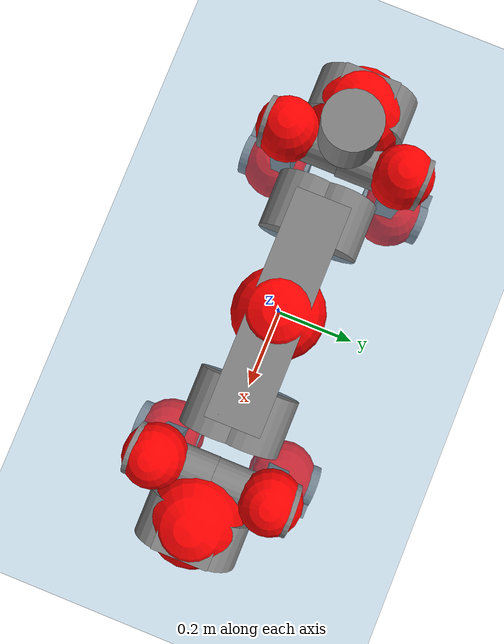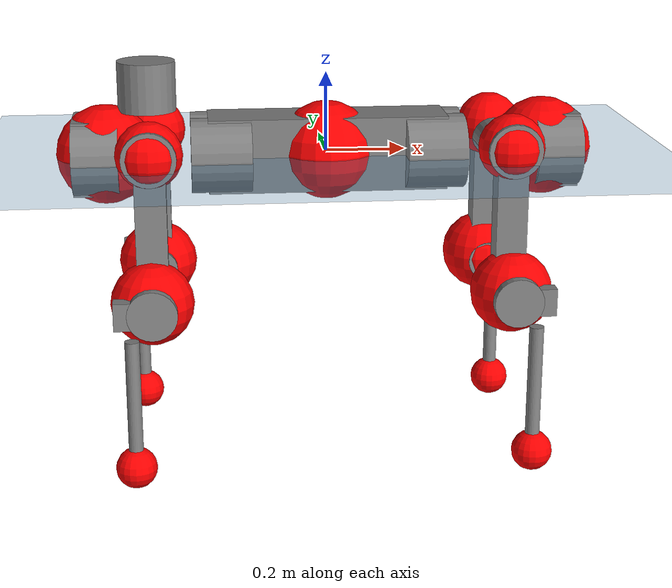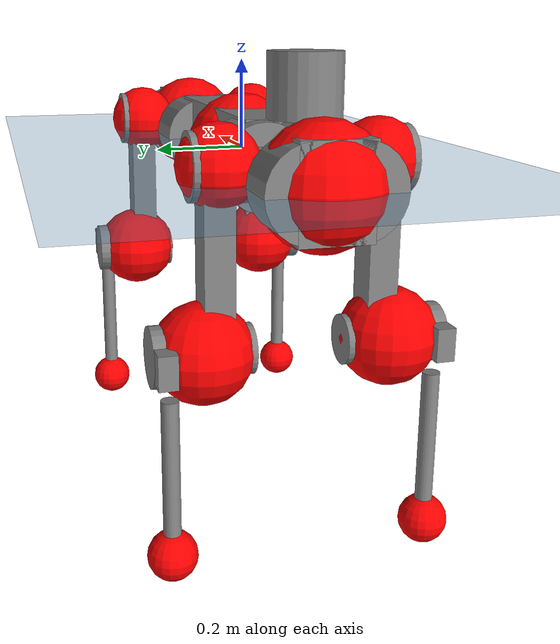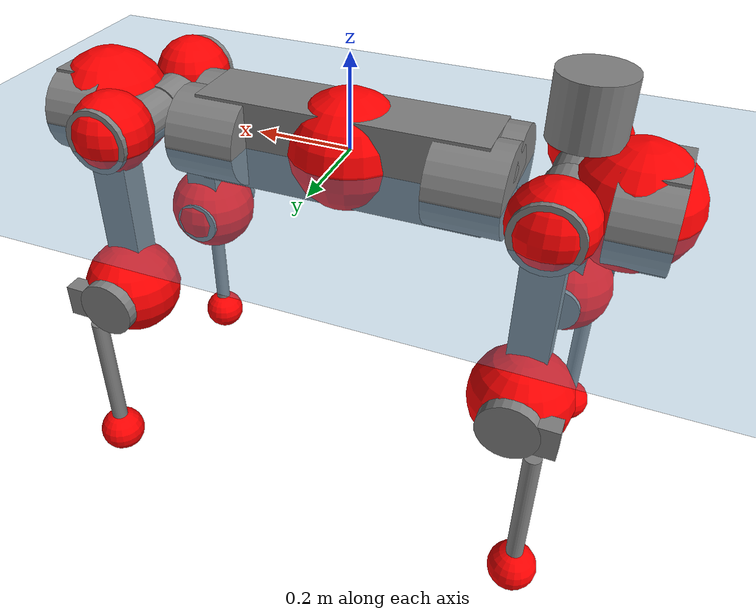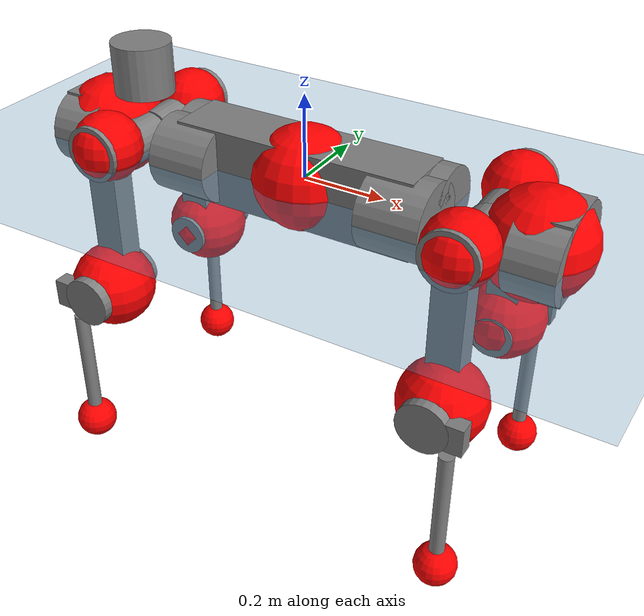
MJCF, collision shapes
<mujoco model="anymal_c">
  <compiler angle="radian" assetdir="assets" balanceinertia="true" inertiafromgeom="false"/>

  <option timestep="0.005" density="1.2" viscosity="2e-05"/>

  <size nkey="1"/>

  <visual>
    <quality shadowsize="8192"/>
    <map shadowclip="0.5"/>
  </visual>

  <default>
    <default class="/">
      <material specular="0" shininess="0.25"/>
      <geom contype="0" conaffinity="0" group="1" solref="-1000 -80"/>
      <site size="0.01 0.005 0.005" group="5"/>
      <general forcelimited="true" forcerange="-80 80" biastype="affine" gainprm="80" biasprm="0 -80 -2"/>
      <default class="anymal_c">
        <joint armature="0.01" damping="0.01" frictionloss="0.1"/>
        <default class="visual">
          <geom type="mesh" group="2"/>
          <default class="visual_zflip"/>
        </default>
        <default class="collision">
          <geom type="cylinder" group="3"/>
          <default class="foot">
            <geom size="0.03 0 0" type="sphere" condim="6" priority="1" friction="0.8 0.02 0.01" solimp="0.015 1 0.03"/>
          </default>
        </default>
      </default>
      <default class="reward_collision_sphere">
        <geom group="5" rgba="1 0 0 1"/>
      </default>
    </default>
  </default>

  <asset>
    <texture type="skybox" colorspace="auto" name="//unnamed_texture_0" builtin="gradient" rgb1="0.95 0.95 0.95" rgb2="0.95 0.95 0.95" width="100" height="600"/>
    <texture type="2d" colorspace="auto" name="texplane" builtin="checker" rgb1="0.345 0.575 0.748" rgb2="0.345 0.575 0.748" markrgb="1 1 1" width="512" height="512"/>
    <texture type="2d" colorspace="linear" name="base" file="base.png"/>
    <texture type="2d" colorspace="linear" name="top_shell" file="top_shell.png"/>
    <texture type="2d" colorspace="linear" name="bottom_shell" file="bottom_shell.png"/>
    <texture type="2d" colorspace="linear" name="remote" file="remote.png"/>
    <texture type="2d" colorspace="linear" name="hatch" file="hatch.png"/>
    <texture type="2d" colorspace="linear" name="handle" file="handle.png"/>
    <texture type="2d" colorspace="linear" name="face" file="face.png"/>
    <texture type="2d" colorspace="linear" name="battery" file="battery.png"/>
    <texture type="2d" colorspace="linear" name="lidar_cage" file="lidar_cage.png"/>
    <texture type="2d" colorspace="linear" name="depth_camera" file="depth_camera.png"/>
    <texture type="2d" colorspace="linear" name="wide_angle_camera" file="wide_angle_camera.png"/>
    <texture type="2d" colorspace="linear" name="lidar" file="lidar.png"/>
    <texture type="2d" colorspace="linear" name="drive" file="drive.png"/>
    <texture type="2d" colorspace="linear" name="hip_l" file="hip_l.png"/>
    <texture type="2d" colorspace="linear" name="shank_l" file="shank_l.png"/>
    <texture type="2d" colorspace="linear" name="foot" file="foot.png"/>
    <texture type="2d" colorspace="linear" name="thigh" file="thigh.png"/>
    <texture type="2d" colorspace="linear" name="shank_r" file="shank_r.png"/>
    <texture type="2d" colorspace="linear" name="hip_r" file="hip_r.png"/>
    <material name="MatPlane" class="/" texture="texplane" texuniform="true" texrepeat="2 2" specular="0.9" shininess="0.5"/>
    <material name="black_plastic" class="/" rgba="0.007 0.007 0.007 1"/>
    <material name="green" class="/" rgba="0.052 0.178 0.033 1"/>
    <material name="red" class="/" rgba="0.178 0.006 0.005 1"/>
    <material name="yellow" class="/" rgba="0.178 0.119 0.006 1"/>
    <material name="lwl" class="/" rgba="0.8 0.8 0.8 1"/>
    <material name="base" class="/" texture="base"/>
    <material name="top_shell" class="/" texture="top_shell"/>
    <material name="bottom_shell" class="/" texture="bottom_shell"/>
    <material name="hip_l" class="/" texture="hip_l"/>
    <material name="thigh" class="/" texture="thigh"/>
    <material name="shank_l" class="/" texture="shank_l"/>
    <material name="foot" class="/" texture="foot"/>
    <material name="hip_r" class="/" texture="hip_r"/>
    <material name="shank" class="/" texture="shank_r"/>
    <material name="hatch" class="/" texture="hatch"/>
    <material name="remote" class="/" texture="remote"/>
    <material name="handle" class="/" texture="handle"/>
    <material name="face" class="/" texture="face"/>
    <material name="depth_camera" class="/" texture="depth_camera"/>
    <material name="wide_angle_camera" class="/" texture="wide_angle_camera"/>
    <material name="battery" class="/" texture="battery"/>
    <material name="lidar_cage" class="/" texture="lidar_cage"/>
    <material name="lidar" class="/" texture="lidar"/>
    <material name="drive" class="/" texture="drive"/>
    <mesh name="base_0" class="/" file="base_0.obj"/>
    <mesh name="base_1" class="/" file="base_1.obj"/>
    <mesh name="base_2" class="/" file="base_2.obj"/>
    <mesh name="base_3" class="/" file="base_3.obj"/>
    <mesh name="base_4" class="/" file="base_4.obj"/>
    <mesh name="base_5" class="/" file="base_5.obj"/>
    <mesh name="top_shell" class="/" file="top_shell.obj"/>
    <mesh name="bottom_shell" class="/" file="bottom_shell.obj"/>
    <mesh name="remote" class="/" file="remote.obj"/>
    <mesh name="handle" class="/" file="handle.obj"/>
    <mesh name="face" class="/" file="face.obj"/>
    <mesh name="wide_angle_camera" class="/" file="wide_angle_camera.obj"/>
    <mesh name="depth_camera" class="/" file="depth_camera.obj"/>
    <mesh name="battery" class="/" file="battery.obj"/>
    <mesh name="lidar_cage" class="/" file="lidar_cage.obj"/>
    <mesh name="lidar" class="/" file="lidar.obj"/>
    <mesh name="drive" class="/" file="drive.obj"/>
    <mesh name="hip_l" class="/" file="hip_l.obj"/>
    <mesh name="thigh" class="/" file="thigh.obj"/>
    <mesh name="shank_l" class="/" file="shank_l.obj"/>
    <mesh name="foot" class="/" file="foot.obj"/>
    <mesh name="hip_r" class="/" file="hip_r.obj"/>
    <mesh name="hatch" class="/" file="hatch.obj"/>
    <mesh name="shank_r" class="/" file="shank_r.obj"/>
  </asset>

  <worldbody>
    <geom name="floor" class="/" size="100 100 0.125" type="plane" group="0" material="MatPlane"/>
    <light name="toplight_shadow" class="/" pos="0 0 5" dir="0.0990148 0.0990148 -0.990148" type="directional" ambient="0.04 0.04 0.04" diffuse="0.55 0.55 0.55" specular="0.12 0.12 0.12"/>
    <light name="toplight_fill" class="/" pos="0 0 5" dir="0.0990148 0.0990148 -0.990148" type="directional" castshadow="false" ambient="0.04 0.04 0.04" diffuse="0.3 0.3 0.3" specular="0.08 0.08 0.08"/>
    <body name="trunk" childclass="anymal_c" pos="0.00201374 0.000739726 0.00194689" quat="0.999999 0.00106101 -0.000280582 6.44455e-05">
      <inertial pos="0.00597096 0.00441912 0.064165" quat="0.49537 0.503716 0.498934 0.501939" mass="21.1761" diaginertia="1.68064 0.0402795 0.665284"/>
      <joint name="//unnamed_joint_0" type="free" armature="0" damping="0" frictionloss="0"/>
      <geom name="//unnamed_geom_1" class="visual" material="green" mesh="base_0"/>
      <geom name="//unnamed_geom_2" class="visual" material="yellow" mesh="base_1"/>
      <geom name="//unnamed_geom_3" class="visual" material="red" mesh="base_2"/>
      <geom name="//unnamed_geom_4" class="visual" material="black_plastic" mesh="base_3"/>
      <geom name="//unnamed_geom_5" class="visual" material="lwl" mesh="base_4"/>
      <geom name="//unnamed_geom_6" class="visual" material="base" mesh="base_5"/>
      <geom name="trunk_1" class="collision" size="0.299132 0.0722042 0.092834" type="box"/>
      <geom name="trunk_2" class="collision" size="0.092834 0.0747829" pos="0.267294 0.0410675 0" quat="0.707107 0 0.707107 0"/>
      <geom name="trunk_3" class="collision" size="0.092834 0.0747829" pos="-0.267294 0.0410675 0" quat="0.707107 0 0.707107 0"/>
      <geom name="trunk_4" class="collision" size="0.092834 0.0747829" pos="0.267294 -0.0410675 0" quat="0.707107 0 0.707107 0"/>
      <geom name="trunk_5" class="collision" size="0.092834 0.0747829" pos="-0.267294 -0.0410675 0" quat="0.707107 0 0.707107 0"/>
      <geom name="//unnamed_geom_12" class="visual" material="top_shell" mesh="top_shell"/>
      <geom name="//unnamed_geom_13" class="visual" material="bottom_shell" mesh="bottom_shell"/>
      <geom name="//unnamed_geom_14" class="visual" material="remote" mesh="remote"/>
      <geom name="//unnamed_geom_15" class="visual" material="handle" mesh="handle"/>
      <geom name="//unnamed_geom_16" class="visual" pos="0.509395 0 0" quat="1 0 0 0" material="face" mesh="face"/>
      <geom name="trunk_6" class="collision" size="0.0567319 0.0722042 0.092834" pos="0.576987 0 0" type="box"/>
      <geom name="//unnamed_geom_18" class="collision" size="0.092834 0.0567319" pos="0.576987 0.0410675 0" quat="0.707107 0 0.707107 0"/>
      <geom name="//unnamed_geom_19" class="collision" size="0.092834 0.0567319" pos="0.576987 -0.0410675 0" quat="0.707107 0 0.707107 0"/>
      <geom name="//unnamed_geom_20" class="visual" pos="0.567341 0 -0.0377217" quat="0.965926 0 0.258819 0" material="depth_camera" mesh="depth_camera"/>
      <geom name="//unnamed_geom_21" class="visual" pos="0.630445 0 0.0191444" material="wide_angle_camera" mesh="wide_angle_camera"/>
      <geom name="//unnamed_geom_22" class="visual_zflip" pos="-0.509395 0 0" quat="0 0 0 1" material="face" mesh="face"/>
      <geom name="trunk_7" class="collision" size="0.0567319 0.0722042 0.092834" pos="-0.576987 0 0" quat="0 0 0 1" type="box"/>
      <geom name="//unnamed_geom_24" class="collision" size="0.092834 0.0567319" pos="-0.576987 -0.0410675 0" quat="0 -0.707107 0 0.707107"/>
      <geom name="//unnamed_geom_25" class="collision" size="0.092834 0.0567319" pos="-0.576987 0.0410675 0" quat="0 -0.707107 0 0.707107"/>
      <geom name="//unnamed_geom_26" class="visual" pos="-0.567341 0 -0.0377217" quat="0 -0.258819 0 0.965926" material="depth_camera" mesh="depth_camera"/>
      <geom name="//unnamed_geom_27" class="visual_zflip" pos="-0.630445 0 0.0191444" quat="0 0 0 1" material="wide_angle_camera" mesh="wide_angle_camera"/>
      <geom name="//unnamed_geom_28" class="visual" material="battery" mesh="battery"/>
      <geom name="//unnamed_geom_29" class="visual" pos="0 0.0364318 0.0367712" quat="0.683013 -0.183013 0.183013 0.683013" material="depth_camera" mesh="depth_camera"/>
      <geom name="//unnamed_geom_30" class="visual" pos="0 -0.0364318 0.0367712" quat="0.683013 0.183013 0.183013 -0.683013" material="depth_camera" mesh="depth_camera"/>
      <geom name="//unnamed_geom_31" class="visual" pos="-0.447334 0 0.0939953" quat="1 0 0 0" material="lidar_cage" mesh="lidar_cage"/>
      <geom name="trunk_8" class="collision" size="0.0722042 0.0618893" pos="-0.447334 0 0.170726"/>
      <geom name="//unnamed_geom_33" class="visual" pos="-0.447334 -0.000252326 0.181852" quat="0.707107 0 0 -0.707107" material="lidar" mesh="lidar"/>
      <geom name="//unnamed_geom_34" class="visual" pos="0.368559 0.0612605 -1.194e-08" quat="0.258819 0.965926 0 0" material="drive" mesh="drive"/>
      <geom name="//unnamed_geom_35" class="visual" pos="0.368559 -0.0612605 1.194e-08" quat="0.258819 -0.965926 0 0" material="drive" mesh="drive"/>
      <geom name="//unnamed_geom_36" class="visual" pos="-0.368559 0.0612605 1.194e-08" quat="0 0 0.965926 -0.258819" material="drive" mesh="drive"/>
      <geom name="//unnamed_geom_37" class="visual" pos="-0.368559 -0.0612605 -1.194e-08" quat="0 0 -0.965926 -0.258819" material="drive" mesh="drive"/>
      <geom name="//unnamed_geom_38" class="visual" pos="0.142557 0 0.0933559" quat="1 0 0 0" material="hatch" mesh="hatch"/>
      <geom name="//unnamed_geom_39" class="reward_collision_sphere" size="0.123779"/>
      <geom name="//unnamed_geom_40" class="reward_collision_sphere" size="0.123779" pos="0.553022 0 0"/>
      <geom name="//unnamed_geom_41" class="reward_collision_sphere" size="0.123779" pos="-0.553022 0 0"/>
      <site name="imu" pos="0.337854 -0.0067278 0.0373658" size="0.0103149"/>
      <camera name="track" pos="0 -1.17336 0" quat="0.707107 0.707107 0 0" mode="trackcom"/>
      <camera name="ego_camera" pos="0.553022 0 -0.0511539" quat="-0.5 -0.5 0.5 0.5"/>
      <body name="LF_HIP" pos="0.37148 0.0599534 -0.000704543" quat="0.258828 0.965923 -9.85381e-07 -2.96176e-06">
        <inertial pos="0.0650621 -0.00894201 -0.012429" quat="-0.127089 0.708451 -0.139249 0.680115" mass="3.18615" diaginertia="0.0172164 0.000336203 0.0112955"/>
        <joint name="LF_HAA" pos="0 0 0" axis="0.999924 0.00511159 -0.0112028" range="-0.755499 0.478808" armature="0.00739396" damping="0.0357504" frictionloss="0.0908952"/>
        <geom name="//unnamed_geom_42" class="visual" pos="0 -0.000702376 0.000115365" quat="0.258819 -0.965926 0 0" material="hip_l" mesh="hip_l"/>
        <geom name="//unnamed_geom_43" class="visual" pos="0.0736134 -0.0809879 -0.0518781" quat="0.183013 -0.683013 0.683013 0.183013" material="drive" mesh="drive"/>
        <geom name="//unnamed_geom_44" class="collision" size="0.0515744 0.0722042" pos="0.0736134 -0.00701657 -0.00883045" quat="-0.353553 -0.612372 0.612372 -0.353553"/>
        <body name="LF_THIGH" pos="0.0738851 -0.0449702 -0.0544164" quat="0.183716 -0.682499 0.683125 0.183805">
          <inertial pos="0.0387687 0.000791867 -0.31906" quat="0.993181 -0.00454381 -0.0872195 0.0772223" mass="3.39199" diaginertia="0.0917734 0.00211171 0.0141674"/>
          <joint name="LF_HFE" pos="0 0 0" axis="0.999499 0.0289288 0.0128202" stiffness="0.01025" range="-3.18719 3.18805" armature="0.0114171" damping="0" frictionloss="0.125666"/>
          <geom name="//unnamed_geom_45" class="visual" pos="0.0127784 2.01358e-05 0" quat="0.707107 0 0 -0.707107" material="thigh" mesh="thigh"/>
          <geom name="//unnamed_geom_46" class="collision" size="0.0670468 0.0412595" pos="0.0491575 0 0" quat="0.5 0.5 -0.5 -0.5"/>
          <geom name="//unnamed_geom_47" class="collision" size="0.0386808 0.0309447 0.145764" pos="0.0368682 0 -0.180719" quat="0.707107 0 0 -0.707107" type="box"/>
          <geom name="//unnamed_geom_48" class="visual" pos="0.123263 0 -0.364472" quat="1 0 0 0" material="drive" mesh="drive"/>
          <geom name="//unnamed_geom_49" class="collision" size="0.0515744 0.0722042" pos="0.0372368 0 -0.364472" quat="0.707107 0 0.707107 0"/>
          <geom name="//unnamed_geom_50" class="reward_collision_sphere" size="0.0825191" pos="0.0307235 0 0"/>
          <body name="LF_SHANK" pos="0.119859 0.00361828 -0.35813" quat="0.999999 -0.0007408 0.00074125 -0.00127145">
            <inertial pos="0.00466293 -0.0362591 -0.105156" quat="0.991831 -0.123471 -0.00318094 -0.0318872" mass="0.638925" diaginertia="0.0287625 0.000646843 0.00373841"/>
            <joint name="LF_KFE" pos="0 0 0" axis="0.999976 0.00666709 -0.001811" range="-3.10882 3.15912" armature="0.0103672" damping="0.0248885" frictionloss="0.096713"/>
            <geom name="//unnamed_geom_51" class="visual" pos="0.00416677 0.0222174 0" quat="0.707107 0 0 -0.707107" material="shank_l" mesh="shank_l"/>
            <geom name="LF_kfe_act" class="collision" size="0.0618893 0.0206298" pos="0.0245788 0 0" quat="0.5 0.5 -0.5 -0.5"/>
            <geom name="//unnamed_geom_53" class="collision" size="0.0593096 0.0348127 0.0195983" pos="0.0245788 -0.0337335 0" quat="0.5 0.5 -0.5 -0.5" type="box"/>
            <geom name="//unnamed_geom_54" class="visual" pos="0.0160366 -0.0444387 -0.432212" quat="0.382683 0 0 -0.92388" material="foot" mesh="foot"/>
            <geom name="LF_calf" class="collision" size="0.018051 0.1457" pos="0.0160376 -0.0515984 -0.216106" quat="0.707107 0 0 -0.707107"/>
            <geom name="LF_foot" class="foot" size="0.0269987" pos="0.0160376 -0.0515984 -0.403438" quat="0.707107 0 0 -0.707107"/>
            <geom name="//unnamed_geom_57" class="reward_collision_sphere" size="0.103149" pos="-0.0614469 0 0"/>
            <geom name="//unnamed_geom_58" class="reward_collision_sphere" size="0.0515744" pos="0.0160376 -0.0515984 -0.403438"/>
            <site name="LF_foot" class="foot" pos="0.0160376 -0.0515984 -0.403438" quat="0.707107 0 0 -0.707107" size="0.0103149"/>
          </body>
        </body>
      </body>
      <body name="RF_HIP" pos="0.370151 -0.0615976 0.00198279" quat="0.258591 -0.965987 -0.000458044 0.000263509">
        <inertial pos="0.065544 0.00722627 -0.00882756" quat="0.135077 0.679136 0.128733 0.709899" mass="2.92846" diaginertia="0.016069 0.000334476 0.0110386"/>
        <joint name="RF_HAA" pos="0 0 0" axis="0.999976 -0.00253354 -0.0064248" range="-0.394776 0.765108" armature="0.0124212" damping="0.0129028" frictionloss="0.126284"/>
        <geom name="//unnamed_geom_59" class="visual" pos="0 0.00070237 0.000115364" quat="0.258819 0.965926 0 0" material="hip_r" mesh="hip_r"/>
        <geom name="//unnamed_geom_60" class="visual" pos="0.0736134 0.0809879 -0.0518781" quat="0.183013 0.683013 0.683013 -0.183013" material="drive" mesh="drive"/>
        <geom name="//unnamed_geom_61" class="collision" size="0.0515744 0.0722042" pos="0.0736134 0.00701657 -0.00883045" quat="-0.353553 0.612372 0.612372 0.353553"/>
        <body name="RF_THIGH" pos="0.0731819 0.0374229 -0.0540249" quat="0.182597 0.68353 0.682557 -0.183198">
          <inertial pos="0.0385077 0.00245664 -0.316431" quat="0.991665 -0.00410564 -0.0718299 0.106885" mass="3.72206" diaginertia="0.0900014 0.00211517 0.0148733"/>
          <joint name="RF_HFE" pos="0 0 0" axis="0.999905 -0.0130222 0.00461095" stiffness="0.00472675" range="-3.26605 3.10878" armature="0.0100319" damping="0.0181464" frictionloss="0.0650394"/>
          <geom name="//unnamed_geom_62" class="visual" pos="0.0127784 2.01358e-05 0" quat="0.707107 0 0 -0.707107" material="thigh" mesh="thigh"/>
          <geom name="//unnamed_geom_63" class="collision" size="0.0670468 0.0412595" pos="0.0491575 0 0" quat="0.5 0.5 0.5 0.5"/>
          <geom name="//unnamed_geom_64" class="collision" size="0.0386808 0.0309447 0.145764" pos="0.0368682 0 -0.180719" quat="0.707107 0 0 0.707107" type="box"/>
          <geom name="//unnamed_geom_65" class="visual" pos="0.123263 0 -0.364472" quat="1 0 0 0" material="drive" mesh="drive"/>
          <geom name="//unnamed_geom_66" class="collision" size="0.0515744 0.0722042" pos="0.0372368 0 -0.364472" quat="0.707107 0 0.707107 0"/>
          <geom name="//unnamed_geom_67" class="reward_collision_sphere" size="0.0825191" pos="0.0307235 0 0"/>
          <body name="RF_SHANK" pos="0.118964 0.00526555 -0.36311" quat="1 -0.000807494 0.000137598 -0.000434924">
            <inertial pos="0.00748171 0.0345153 -0.108261" quat="0.993001 0.114803 -0.00380581 0.0274749" mass="0.631148" diaginertia="0.0308919 0.000672682 0.00392881"/>
            <joint name="RF_KFE" pos="0 0 0" axis="0.999999 0.000401674 -0.00163232" range="-3.12232 3.11274" armature="0.00948932" damping="0.0191839" frictionloss="0.133199"/>
            <geom name="//unnamed_geom_68" class="visual" pos="0.00416674 -0.0222174 0" quat="0.707107 0 0 0.707107" material="shank" mesh="shank_r"/>
            <geom name="RF_kfe_act" class="collision" size="0.0618893 0.0206298" pos="0.0245788 0 0" quat="0.5 0.5 0.5 0.5"/>
            <geom name="//unnamed_geom_70" class="collision" size="0.0593096 0.0348127 0.0195983" pos="0.0245788 0.0337335 0" quat="0.5 0.5 0.5 0.5" type="box"/>
            <geom name="//unnamed_geom_71" class="visual" pos="0.0160387 0.0444387 -0.432212" quat="0.382683 0 0 0.92388" material="foot" mesh="foot"/>
            <geom name="RF_calf" class="collision" size="0.018051 0.1457" pos="0.0160376 0.0515984 -0.216106" quat="0.707107 0 0 0.707107"/>
            <geom name="RF_foot" class="foot" size="0.0392466" pos="0.0160376 0.0515984 -0.403438" quat="0.707107 0 0 0.707107"/>
            <geom name="//unnamed_geom_74" class="reward_collision_sphere" size="0.103149" pos="-0.0614469 0 0"/>
            <geom name="//unnamed_geom_75" class="reward_collision_sphere" size="0.0515744" pos="0.0160376 0.0515984 -0.403438"/>
            <site name="RF_foot" class="foot" pos="0.0160376 0.0515984 -0.403438" quat="0.707107 0 0 0.707107" size="0.0103149"/>
          </body>
        </body>
      </body>
      <body name="LH_HIP" pos="-0.362362 0.0620197 0.00192119" quat="0.000826087 2.68759e-05 0.965736 -0.259526">
        <inertial pos="0.0702292 0.00409135 -0.00909293" quat="0.136763 0.681134 0.123839 0.708531" mass="3.09623" diaginertia="0.0169159 0.000331829 0.0124429"/>
        <joint name="LH_HAA" pos="0 0 0" axis="0.999971 0.0035542 -0.0067601" range="-0.469472 0.868394" armature="0.0129237" damping="0.00714191" frictionloss="0.0968922"/>
        <geom name="//unnamed_geom_76" class="visual" pos="0 0.00070237 0.000115364" quat="-0.258819 -0.965926 0 0" material="hip_r" mesh="hip_r"/>
        <geom name="//unnamed_geom_77" class="visual" pos="0.0736134 0.0809879 -0.0518781" quat="0.183013 0.683013 0.683013 -0.183013" material="drive" mesh="drive"/>
        <geom name="//unnamed_geom_78" class="collision" size="0.0515744 0.0722042" pos="0.0736134 0.00701657 -0.00883045" quat="-0.353553 0.612372 0.612372 0.353553"/>
        <body name="LH_THIGH" pos="0.0748444 0.0497381 -0.0564029" quat="0.183162 0.682974 0.683019 -0.182983">
          <inertial pos="0.038157 -0.0033479 -0.316361" quat="0.992643 0.00171162 -0.0862958 0.084906" mass="3.38837" diaginertia="0.0855485 0.00211413 0.0147037"/>
          <joint name="LH_HFE" pos="0 0 0" axis="0.999847 -0.015956 -0.00713542" range="-3.14922 3.09397" armature="0.0103003" damping="0.00428598" frictionloss="0.110147"/>
          <geom name="//unnamed_geom_79" class="visual" pos="0.0127784 2.01358e-05 0" quat="0.707107 0 0 -0.707107" material="thigh" mesh="thigh"/>
          <geom name="//unnamed_geom_80" class="collision" size="0.0670468 0.0412595" pos="0.0491575 0 0" quat="0.5 0.5 -0.5 -0.5"/>
          <geom name="//unnamed_geom_81" class="collision" size="0.0386808 0.0309447 0.145764" pos="0.0368682 0 -0.180719" quat="0.707107 0 0 -0.707107" type="box"/>
          <geom name="//unnamed_geom_82" class="visual" pos="0.123263 0 -0.364472" quat="1 0 0 0" material="drive" mesh="drive"/>
          <geom name="//unnamed_geom_83" class="collision" size="0.0515744 0.0722042" pos="0.0372368 0 -0.364472" quat="0.707107 0 0.707107 0"/>
          <geom name="//unnamed_geom_84" class="reward_collision_sphere" size="0.0825191" pos="0.0307235 0 0"/>
          <body name="LH_SHANK" pos="0.124929 0.000100828 -0.365587" quat="1 0.000300989 -0.00017156 0.000370114">
            <inertial pos="0.00659631 0.0356486 -0.103277" quat="0.992667 0.120225 -0.00782287 -0.00988456" mass="0.639388" diaginertia="0.0289105 0.00065607 0.00411392"/>
            <joint name="LH_KFE" pos="0 0 0" axis="0.999916 -0.00592705 0.0114975" stiffness="0.00404744" range="-3.13336 3.14824" armature="0.011638" damping="0.00621988" frictionloss="0.095456"/>
            <geom name="//unnamed_geom_85" class="visual" pos="0.00416674 -0.0222174 0" quat="-0.707107 0 0 -0.707107" material="shank" mesh="shank_r"/>
            <geom name="LH_kfe_act" class="collision" size="0.0618893 0.0206298" pos="0.0245788 0 0" quat="0.5 0.5 -0.5 -0.5"/>
            <geom name="//unnamed_geom_87" class="collision" size="0.0593096 0.0348127 0.0195983" pos="0.0245788 0.0337335 0" quat="0.5 0.5 -0.5 -0.5" type="box"/>
            <geom name="//unnamed_geom_88" class="visual" pos="0.0160387 0.0444387 -0.432212" quat="-0.382683 0 0 -0.92388" material="foot" mesh="foot"/>
            <geom name="LH_calf" class="collision" size="0.018051 0.1457" pos="0.0160376 0.0515984 -0.216106" quat="0.707107 0 0 -0.707107"/>
            <geom name="LH_foot" class="foot" size="0.0203343" pos="0.0160376 0.0515984 -0.403438" quat="0.707107 0 0 -0.707107"/>
            <geom name="//unnamed_geom_91" class="reward_collision_sphere" size="0.103149" pos="-0.0614469 0 0"/>
            <geom name="//unnamed_geom_92" class="reward_collision_sphere" size="0.0515744" pos="0.0160376 0.0515984 -0.403438"/>
            <site name="LH_foot" class="foot" pos="0.0160376 0.0515984 -0.403438" quat="0.707107 0 0 -0.707107" size="0.0103149"/>
          </body>
        </body>
      </body>
      <body name="RH_HIP" pos="-0.367986 -0.0560533 -0.000743721" quat="-0.000724702 -0.0011125 -0.966003 -0.258527">
        <inertial pos="0.074723 -0.00937715 -0.0146785" quat="-0.127276 0.714073 -0.127006 0.676587" mass="3.05871" diaginertia="0.0163213 0.000341201 0.012078"/>
        <joint name="RH_HAA" pos="0 0 0" axis="0.999989 0.00326495 0.00340687" range="-0.646717 0.367229" armature="0.011008" damping="0.0172792" frictionloss="0.0996834"/>
        <geom name="//unnamed_geom_93" class="visual" pos="0 -0.000702376 0.000115365" quat="-0.258819 0.965926 0 0" material="hip_l" mesh="hip_l"/>
        <geom name="//unnamed_geom_94" class="visual" pos="0.0736134 -0.0809879 -0.0518781" quat="-0.183013 0.683013 -0.683013 -0.183013" material="drive" mesh="drive"/>
        <geom name="//unnamed_geom_95" class="collision" size="0.0515744 0.0722042" pos="0.0736134 -0.00701657 -0.00883045" quat="0.353553 0.612372 -0.612372 0.353553"/>
        <body name="RH_THIGH" pos="0.0757648 -0.0427012 -0.058556" quat="-0.182863 0.683141 -0.68288 -0.183178">
          <inertial pos="0.0358213 -0.00241066 -0.311893" quat="0.993066 -0.00523095 -0.0807447 0.085278" mass="3.93741" diaginertia="0.0966808 0.00228823 0.0159944"/>
          <joint name="RH_HFE" pos="0 0 0" axis="0.999866 -0.0161888 -0.00260378" range="-3.10974 3.13359" armature="0.00985372" damping="0" frictionloss="0.100284"/>
          <geom name="//unnamed_geom_96" class="visual" pos="0.0127784 2.01358e-05 0" quat="0.707107 0 0 -0.707107" material="thigh" mesh="thigh"/>
          <geom name="//unnamed_geom_97" class="collision" size="0.0670468 0.0412595" pos="0.0491575 0 0" quat="0.5 0.5 0.5 0.5"/>
          <geom name="//unnamed_geom_98" class="collision" size="0.0386808 0.0309447 0.145764" pos="0.0368682 0 -0.180719" quat="0.707107 0 0 0.707107" type="box"/>
          <geom name="//unnamed_geom_99" class="visual" pos="0.123263 0 -0.364472" quat="1 0 0 0" material="drive" mesh="drive"/>
          <geom name="//unnamed_geom_100" class="collision" size="0.0515744 0.0722042" pos="0.0372368 0 -0.364472" quat="0.707107 0 0.707107 0"/>
          <geom name="//unnamed_geom_101" class="reward_collision_sphere" size="0.0825191" pos="0.0307235 0 0"/>
          <body name="RH_SHANK" pos="0.127892 -0.00250706 -0.362581" quat="1 -3.18229e-05 -4.06029e-05 3.54383e-05">
            <inertial pos="0.00582391 -0.0354707 -0.101539" quat="0.991979 -0.124101 0.0145058 -0.0191608" mass="0.679312" diaginertia="0.0293557 0.000628206 0.00397533"/>
            <joint name="RH_KFE" pos="0 0 0" axis="0.999634 0.0270357 0.000833719" range="-3.16577 3.10458" armature="0.013315" damping="0.0165919" frictionloss="0.104659"/>
            <geom name="//unnamed_geom_102" class="visual" pos="0.00416677 0.0222174 0" quat="0.707107 0 0 -0.707107" material="shank_l" mesh="shank_l"/>
            <geom name="RH_kfe_act" class="collision" size="0.0618893 0.0206298" pos="0.0245788 0 0" quat="0.5 0.5 0.5 0.5"/>
            <geom name="//unnamed_geom_104" class="collision" size="0.0593096 0.0348127 0.0195983" pos="0.0245788 -0.0337335 0" quat="0.5 0.5 0.5 0.5" type="box"/>
            <geom name="//unnamed_geom_105" class="visual" pos="0.0160366 -0.0444387 -0.432212" quat="0.382683 0 0 -0.92388" material="foot" mesh="foot"/>
            <geom name="RH_calf" class="collision" size="0.018051 0.1457" pos="0.0160376 -0.0515984 -0.216106" quat="0.707107 0 0 0.707107"/>
            <geom name="RH_foot" class="foot" size="0.0325763" pos="0.0160376 -0.0515984 -0.403438" quat="0.707107 0 0 0.707107"/>
            <geom name="//unnamed_geom_108" class="reward_collision_sphere" size="0.103149" pos="-0.0614469 0 0"/>
            <geom name="//unnamed_geom_109" class="reward_collision_sphere" size="0.0515744" pos="0.0160376 -0.0515984 -0.403438"/>
            <site name="RH_foot" class="foot" pos="0.0160376 -0.0515984 -0.403438" quat="0.707107 0 0 0.707107" size="0.0103149"/>
          </body>
        </body>
      </body>
    </body>
  </worldbody>

  <contact>
    <pair class="/" geom1="floor" geom2="LF_foot" name="//unnamed_contact_0"/>
    <pair class="/" geom1="floor" geom2="RF_foot" name="//unnamed_contact_1"/>
    <pair class="/" geom1="floor" geom2="LH_foot" name="//unnamed_contact_2"/>
    <pair class="/" geom1="floor" geom2="RH_foot" name="//unnamed_contact_3"/>
  </contact>

  <actuator>
    <general name="LF_HAA" class="/" joint="LF_HAA" forcerange="-76.41 76.41" gainprm="59.9343" biasprm="0 -59.9343 -2.03929"/>
    <general name="LF_HFE" class="/" joint="LF_HFE" forcerange="-84.3832 84.3832" gainprm="59.9343" biasprm="0 -59.9343 -2.03929"/>
    <general name="LF_KFE" class="/" joint="LF_KFE" forcerange="-79.5625 79.5625" gainprm="59.9343" biasprm="0 -59.9343 -2.03929"/>
    <general name="RF_HAA" class="/" joint="RF_HAA" forcerange="-86.2135 86.2135" gainprm="59.9343" biasprm="0 -59.9343 -2.03929"/>
    <general name="RF_HFE" class="/" joint="RF_HFE" forcerange="-84.7339 84.7339" gainprm="59.9343" biasprm="0 -59.9343 -2.03929"/>
    <general name="RF_KFE" class="/" joint="RF_KFE" forcerange="-95.4908 95.4908" gainprm="59.9343" biasprm="0 -59.9343 -2.03929"/>
    <general name="LH_HAA" class="/" joint="LH_HAA" forcerange="-82.2735 82.2735" gainprm="59.9343" biasprm="0 -59.9343 -2.03929"/>
    <general name="LH_HFE" class="/" joint="LH_HFE" forcerange="-96.1553 96.1553" gainprm="59.9343" biasprm="0 -59.9343 -2.03929"/>
    <general name="LH_KFE" class="/" joint="LH_KFE" forcerange="-79.9689 79.9689" gainprm="59.9343" biasprm="0 -59.9343 -2.03929"/>
    <general name="RH_HAA" class="/" joint="RH_HAA" forcerange="-78.0105 78.0105" gainprm="59.9343" biasprm="0 -59.9343 -2.03929"/>
    <general name="RH_HFE" class="/" joint="RH_HFE" forcerange="-100.416 100.416" gainprm="59.9343" biasprm="0 -59.9343 -2.03929"/>
    <general name="RH_KFE" class="/" joint="RH_KFE" forcerange="-71.5489 71.5489" gainprm="59.9343" biasprm="0 -59.9343 -2.03929"/>
  </actuator>

  <sensor>
    <gyro site="imu" name="imu_angular_velocity"/>
    <velocimeter site="imu" name="imu_linear_velocity"/>
    <framelinvel objtype="site" objname="LF_foot" name="LF_foot_global_linear_velocity"/>
    <framelinvel objtype="site" objname="RF_foot" name="RF_foot_global_linear_velocity"/>
    <framelinvel objtype="site" objname="LH_foot" name="LH_foot_global_linear_velocity"/>
    <framelinvel objtype="site" objname="RH_foot" name="RH_foot_global_linear_velocity"/>
  </sensor>

  <keyframe>
    <key name="home" qpos="0 0 0.55 1 0 0 0 0 0.4 -0.8 0 -0.4 0.8 0 -0.4 0.8 0 0.4 -0.8"/>
  </keyframe>
</mujoco>
